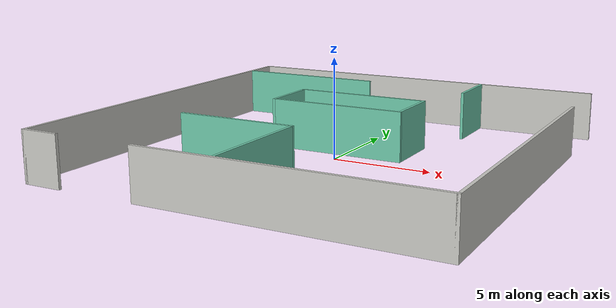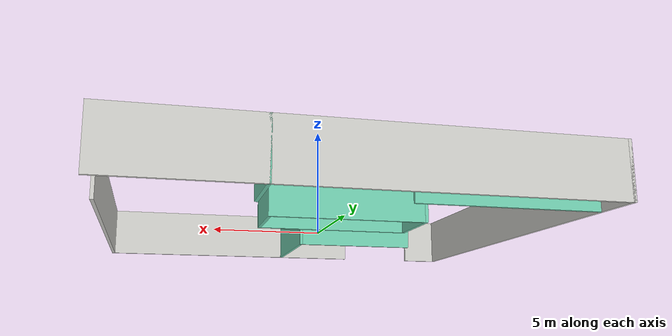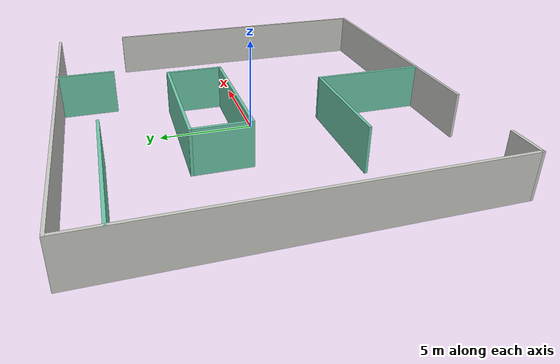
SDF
<?xml version='1.0'?>
<sdf version='1.7'>
  <model name='Obstacle_Course'>
    <pose>0 0 0 0 -0 0</pose>
    <link name='Wall_0'>
      <collision name='Wall_0_Collision'>
        <geometry>
          <box>
            <size>20.15 0.15 2.5</size>
          </box>
        </geometry>
        <pose>0 0 1.25 0 -0 0</pose>
      </collision>
      <visual name='Wall_0_Visual'>
        <pose>0 0 1.25 0 -0 0</pose>
        <geometry>
          <box>
            <size>20.15 0.15 2.5</size>
          </box>
        </geometry>
        <material>
          <script>
            <uri>file://media/materials/scripts/gazebo.material</uri>
            <name>Gazebo/CeilingTiled</name>
          </script>
          <ambient>0.760784 0.662745 0.627451 1</ambient>
        </material>
        <meta>
          <layer>0</layer>
        </meta>
      </visual>
      <pose>-10 0 0 0 -0 1.5708</pose>
    </link>
    <link name='Wall_10'>
      <collision name='Wall_10_Collision'>
        <geometry>
          <box>
            <size>14.15 0.15 2.5</size>
          </box>
        </geometry>
        <pose>0 0 1.25 0 -0 0</pose>
      </collision>
      <visual name='Wall_10_Visual'>
        <pose>0 0 1.25 0 -0 0</pose>
        <geometry>
          <box>
            <size>14.15 0.15 2.5</size>
          </box>
        </geometry>
        <material>
          <script>
            <uri>file://media/materials/scripts/gazebo.material</uri>
            <name>Gazebo/CeilingTiled</name>
          </script>
          <ambient>0.760784 0.662745 0.627451 1</ambient>
        </material>
        <meta>
          <layer>0</layer>
        </meta>
      </visual>
      <pose>3 -10 0 0 -0 0</pose>
    </link>
    <link name='Wall_12'>
      <collision name='Wall_12_Collision'>
        <geometry>
          <box>
            <size>16.15 0.15 2.5</size>
          </box>
        </geometry>
        <pose>0 0 1.25 0 -0 0</pose>
      </collision>
      <visual name='Wall_12_Visual'>
        <pose>0 0 1.25 0 -0 0</pose>
        <geometry>
          <box>
            <size>16.15 0.15 2.5</size>
          </box>
        </geometry>
        <material>
          <script>
            <uri>file://media/materials/scripts/gazebo.material</uri>
            <name>Gazebo/CeilingTiled</name>
          </script>
          <ambient>0.760784 0.662745 0.627451 1</ambient>
        </material>
        <meta>
          <layer>0</layer>
        </meta>
      </visual>
      <pose>10 -2 0 0 -0 1.5708</pose>
    </link>
    <link name='Wall_14'>
      <collision name='Wall_14_Collision'>
        <geometry>
          <box>
            <size>6.15 0.15 2.5</size>
          </box>
        </geometry>
        <pose>0 0 1.25 0 -0 0</pose>
      </collision>
      <visual name='Wall_14_Visual'>
        <pose>0 0 1.25 0 -0 0</pose>
        <geometry>
          <box>
            <size>6.15 0.15 2.5</size>
          </box>
        </geometry>
        <material>
          <script>
            <uri>file://media/materials/scripts/gazebo.material</uri>
            <name>Gazebo/Grey</name>
          </script>
          <ambient>0.435294 0.796078 0.67451 1</ambient>
        </material>
        <meta>
          <layer>0</layer>
        </meta>
      </visual>
      <pose>0 -7 0 0 -0 1.5708</pose>
    </link>
    <link name='Wall_16'>
      <collision name='Wall_16_Collision'>
        <geometry>
          <box>
            <size>6.15 0.15 2.5</size>
          </box>
        </geometry>
        <pose>0 0 1.25 0 -0 0</pose>
      </collision>
      <visual name='Wall_16_Visual'>
        <pose>0 0 1.25 0 -0 0</pose>
        <geometry>
          <box>
            <size>6.15 0.15 2.5</size>
          </box>
        </geometry>
        <material>
          <script>
            <uri>file://media/materials/scripts/gazebo.material</uri>
            <name>Gazebo/Grey</name>
          </script>
          <ambient>0.435294 0.796078 0.67451 1</ambient>
        </material>
        <meta>
          <layer>0</layer>
        </meta>
      </visual>
      <pose>-3 -4 0 0 -0 3.14159</pose>
    </link>
    <link name='Wall_18'>
      <collision name='Wall_18_Collision'>
        <geometry>
          <box>
            <size>7.15 0.15 2.5</size>
          </box>
        </geometry>
        <pose>0 0 1.25 0 -0 0</pose>
      </collision>
      <visual name='Wall_18_Visual'>
        <pose>0 0 1.25 0 -0 0</pose>
        <geometry>
          <box>
            <size>7.15 0.15 2.5</size>
          </box>
        </geometry>
        <material>
          <script>
            <uri>file://media/materials/scripts/gazebo.material</uri>
            <name>Gazebo/Grey</name>
          </script>
          <ambient>0.435294 0.796078 0.67451 1</ambient>
        </material>
        <meta>
          <layer>0</layer>
        </meta>
      </visual>
      <pose>-0.5 4 0 0 -0 0</pose>
    </link>
    <link name='Wall_19'>
      <collision name='Wall_19_Collision'>
        <geometry>
          <box>
            <size>3.15 0.15 2.5</size>
          </box>
        </geometry>
        <pose>0 0 1.25 0 -0 0</pose>
      </collision>
      <visual name='Wall_19_Visual'>
        <pose>0 0 1.25 0 -0 0</pose>
        <geometry>
          <box>
            <size>3.15 0.15 2.5</size>
          </box>
        </geometry>
        <material>
          <script>
            <uri>file://media/materials/scripts/gazebo.material</uri>
            <name>Gazebo/Grey</name>
          </script>
          <ambient>0.435294 0.796078 0.67451 1</ambient>
        </material>
        <meta>
          <layer>0</layer>
        </meta>
      </visual>
      <pose>3 2.5 0 0 -0 -1.5708</pose>
    </link>
    <link name='Wall_21'>
      <collision name='Wall_21_Collision'>
        <geometry>
          <box>
            <size>7.15 0.15 2.5</size>
          </box>
        </geometry>
        <pose>0 0 1.25 0 -0 0</pose>
      </collision>
      <visual name='Wall_21_Visual'>
        <pose>0 0 1.25 0 -0 0</pose>
        <geometry>
          <box>
            <size>7.15 0.15 2.5</size>
          </box>
        </geometry>
        <material>
          <script>
            <uri>file://media/materials/scripts/gazebo.material</uri>
            <name>Gazebo/Grey</name>
          </script>
          <ambient>0.435294 0.796078 0.67451 1</ambient>
        </material>
        <meta>
          <layer>0</layer>
        </meta>
      </visual>
      <pose>-0.5 1 0 0 -0 3.14159</pose>
    </link>
    <link name='Wall_23'>
      <collision name='Wall_23_Collision'>
        <geometry>
          <box>
            <size>3.15 0.15 2.5</size>
          </box>
        </geometry>
        <pose>0 0 1.25 0 -0 0</pose>
      </collision>
      <visual name='Wall_23_Visual'>
        <pose>0 0 1.25 0 -0 0</pose>
        <geometry>
          <box>
            <size>3.15 0.15 2.5</size>
          </box>
        </geometry>
        <material>
          <script>
            <uri>file://media/materials/scripts/gazebo.material</uri>
            <name>Gazebo/Grey</name>
          </script>
          <ambient>0.435294 0.796078 0.67451 1</ambient>
        </material>
        <meta>
          <layer>0</layer>
        </meta>
      </visual>
      <pose>-4 2.5 0 0 -0 -1.5708</pose>
    </link>
    <link name='Wall_25'>
      <collision name='Wall_25_Collision'>
        <geometry>
          <box>
            <size>8.15 0.15 2.5</size>
          </box>
        </geometry>
        <pose>0 0 1.25 0 -0 0</pose>
      </collision>
      <visual name='Wall_25_Visual'>
        <pose>0 0 1.25 0 -0 0</pose>
        <geometry>
          <box>
            <size>8.15 0.15 2.5</size>
          </box>
        </geometry>
        <material>
          <script>
            <uri>file://media/materials/scripts/gazebo.material</uri>
            <name>Gazebo/Grey</name>
          </script>
          <ambient>0.435294 0.796078 0.67451 1</ambient>
        </material>
        <meta>
          <layer>0</layer>
        </meta>
      </visual>
      <pose>-6 8 0 0 -0 0</pose>
    </link>
    <link name='Wall_27'>
      <collision name='Wall_27_Collision'>
        <geometry>
          <box>
            <size>3.15 0.15 2.5</size>
          </box>
        </geometry>
        <pose>0 0 1.25 0 -0 0</pose>
      </collision>
      <visual name='Wall_27_Visual'>
        <pose>0 0 1.25 0 -0 0</pose>
        <geometry>
          <box>
            <size>3.15 0.15 2.5</size>
          </box>
        </geometry>
        <material>
          <script>
            <uri>file://media/materials/scripts/gazebo.material</uri>
            <name>Gazebo/Grey</name>
          </script>
          <ambient>0.435294 0.796078 0.67451 1</ambient>
        </material>
        <meta>
          <layer>0</layer>
        </meta>
      </visual>
      <pose>4 8.5 0 0 -0 -1.5708</pose>
    </link>
    <link name='Wall_6'>
      <collision name='Wall_6_Collision'>
        <geometry>
          <box>
            <size>20.15 0.15 2.5</size>
          </box>
        </geometry>
        <pose>0 0 1.25 0 -0 0</pose>
      </collision>
      <visual name='Wall_6_Visual'>
        <pose>0 0 1.25 0 -0 0</pose>
        <geometry>
          <box>
            <size>20.15 0.15 2.5</size>
          </box>
        </geometry>
        <material>
          <script>
            <uri>file://media/materials/scripts/gazebo.material</uri>
            <name>Gazebo/CeilingTiled</name>
          </script>
          <ambient>0.760784 0.662745 0.627451 1</ambient>
        </material>
        <meta>
          <layer>0</layer>
        </meta>
      </visual>
      <pose>0 10 0 0 -0 0</pose>
    </link>
    <link name='Wall_8'>
      <collision name='Wall_8_Collision'>
        <geometry>
          <box>
            <size>2 0.15 2.5</size>
          </box>
        </geometry>
        <pose>0 0 1.25 0 -0 0</pose>
      </collision>
      <visual name='Wall_8_Visual'>
        <pose>0 0 1.25 0 -0 0</pose>
        <geometry>
          <box>
            <size>2 0.15 2.5</size>
          </box>
        </geometry>
        <material>
          <script>
            <uri>file://media/materials/scripts/gazebo.material</uri>
            <name>Gazebo/CeilingTiled</name>
          </script>
          <ambient>0.760784 0.662745 0.627451 1</ambient>
        </material>
        <meta>
          <layer>0</layer>
        </meta>
      </visual>
      <pose>-9.075 -10 0 0 -0 0</pose>
    </link>
    <static>1</static>
  </model>
</sdf>
